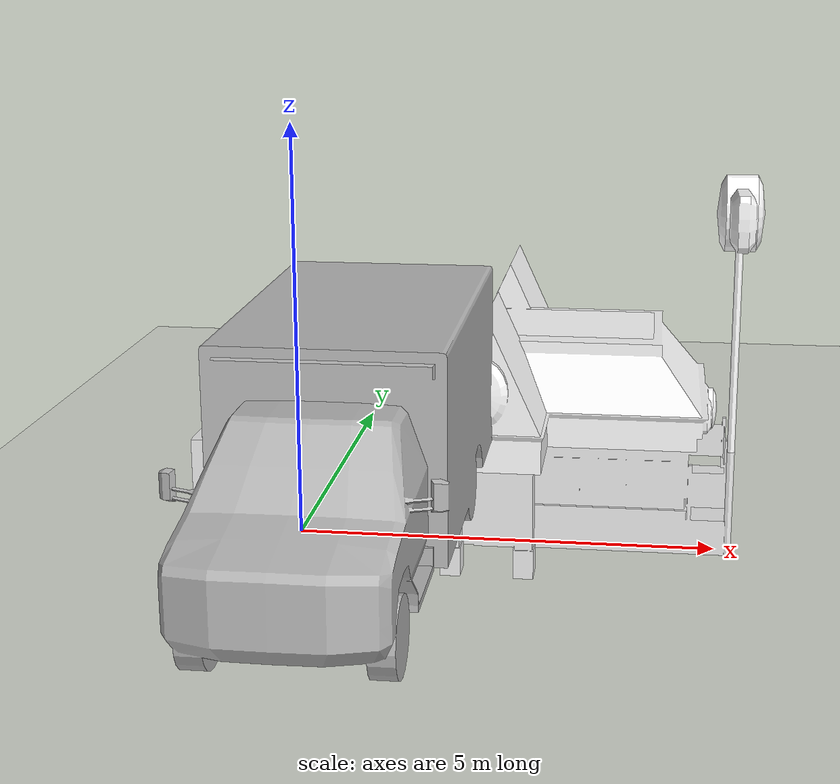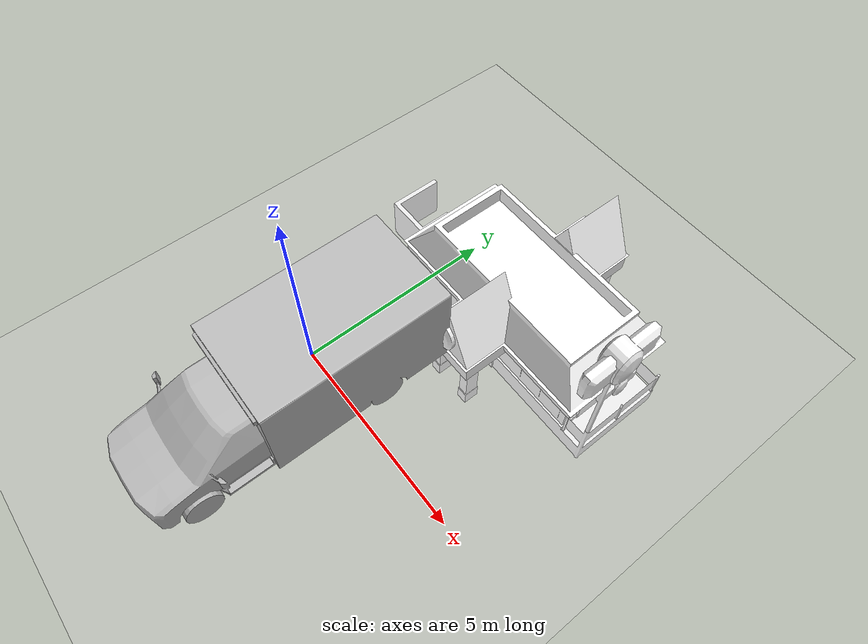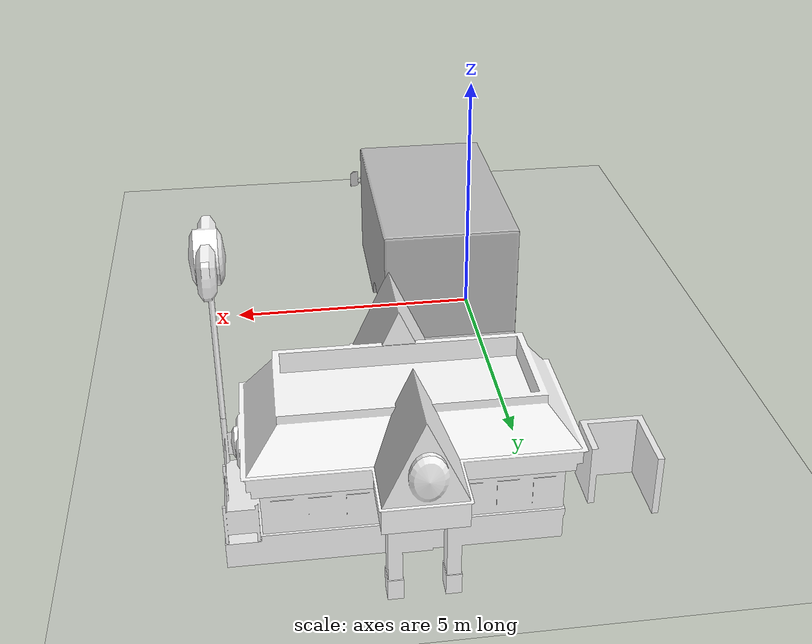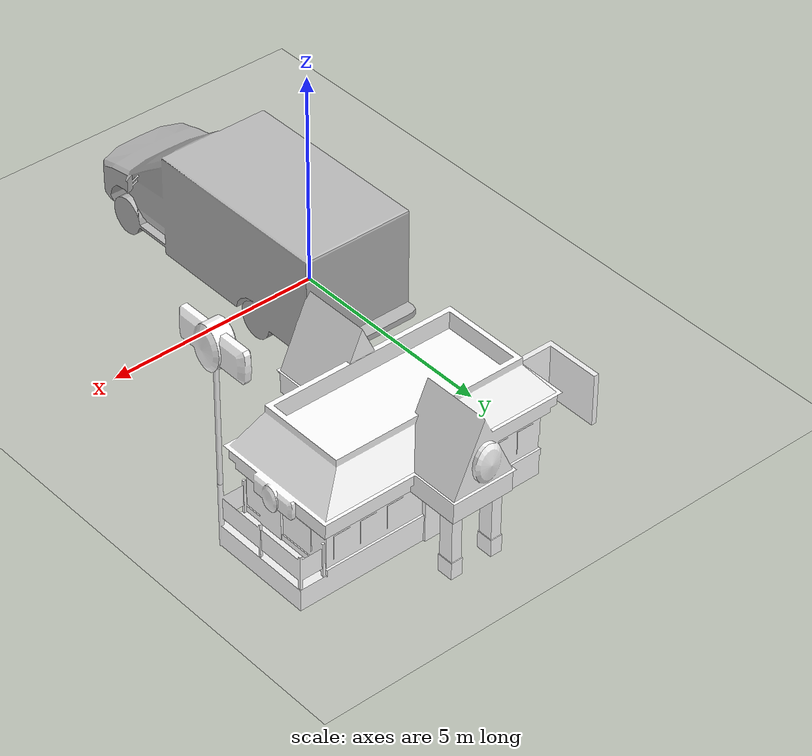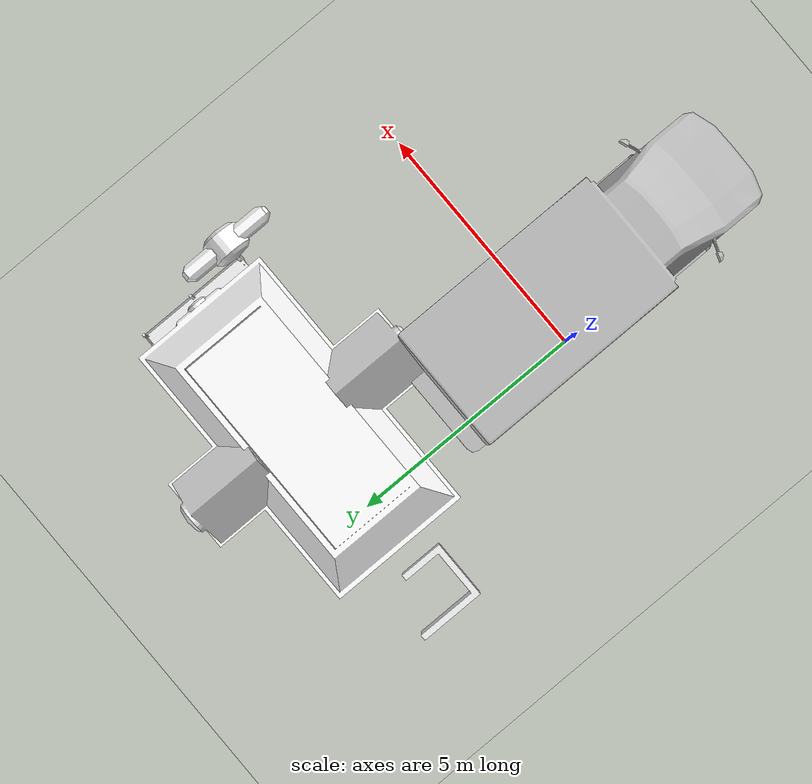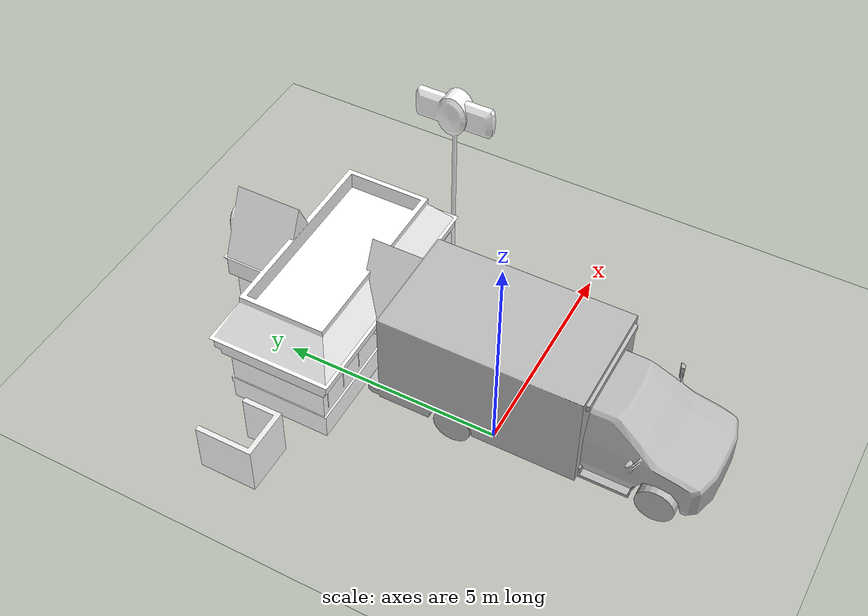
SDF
<sdf version='1.6'>
  <world name='default'>
    <light name='sun' type='directional'>
      <cast_shadows>1</cast_shadows>
      <pose frame=''>0 0 10 0 -0 0</pose>
      <diffuse>0.8 0.8 0.8 1</diffuse>
      <specular>0.2 0.2 0.2 1</specular>
      <attenuation>
        <range>1000</range>
        <constant>0.9</constant>
        <linear>0.01</linear>
        <quadratic>0.001</quadratic>
      </attenuation>
      <direction>-0.5 0.1 -0.9</direction>
    </light>

    <model name='ground_plane'>
      <static>1</static>
      <link name='link'>
        <collision name='collision'>
          <geometry>
            <plane>
              <normal>0 0 1</normal>
              <size>100 100</size>
            </plane>
          </geometry>
          <surface>
            <contact>
              <collide_bitmask>65535</collide_bitmask>
              <ode/>
            </contact>
            <friction>
              <ode>
                <mu>100</mu>
                <mu2>50</mu2>
              </ode>
              <torsional>
                <ode/>
              </torsional>
            </friction>
            <bounce/>
          </surface>
          <max_contacts>10</max_contacts>
        </collision>
        <visual name='visual'>
          <cast_shadows>0</cast_shadows>
          <geometry>
            <plane>
              <normal>0 0 1</normal>
              <size>100 100</size>
            </plane>
          </geometry>
          <material>
            <script>
              <uri>file://media/materials/scripts/gazebo.material</uri>
              <name>Gazebo/Grey</name>
            </script>
          </material>
        </visual>
        <self_collide>0</self_collide>
        <enable_wind>0</enable_wind>
        <kinematic>0</kinematic>
      </link>
    </model>

    <gravity>0 0 -9.8</gravity>
    <magnetic_field>6e-06 2.3e-05 -4.2e-05</magnetic_field>
    <atmosphere type='adiabatic'/>
    <physics name='default_physics' default='0' type='ode'>
      <max_step_size>0.001</max_step_size>
      <real_time_factor>1</real_time_factor>
      <real_time_update_rate>1000</real_time_update_rate>
    </physics>
    <scene>
      <ambient>0.4 0.4 0.4 1</ambient>
      <background>0.7 0.7 0.7 1</background>
      <shadows>1</shadows>
    </scene>
    <audio>
      <device>default</device>
    </audio>
    <wind/>
    <spherical_coordinates>
      <surface_model>EARTH_WGS84</surface_model>
      <latitude_deg>0</latitude_deg>
      <longitude_deg>0</longitude_deg>
      <elevation>0</elevation>
      <heading_deg>0</heading_deg>
    </spherical_coordinates>

    <model name='ambulance'>
          <pose frame=''>0.760956 -0.886921 0 0 -0 0</pose>
      <static>1</static>
      <link name='link'>
        <collision name='collision'>
          <geometry>
            <mesh>
              <scale>0.0254 0.0254 0.0254</scale>
              <uri>model://ambulance/meshes/ambulance.obj</uri>
            </mesh>
          </geometry>
          <max_contacts>10</max_contacts>
          <surface>
            <contact>
              <ode/>
            </contact>
            <bounce/>
            <friction>
              <torsional>
                <ode/>
              </torsional>
              <ode/>
            </friction>
          </surface>
        </collision>
        <visual name='visual'>
          <geometry>
            <mesh>
              <scale>0.0254 0.0254 0.0254</scale>
              <uri>model://ambulance/meshes/ambulance.obj</uri>
            </mesh>
          </geometry>
        </visual>
        <self_collide>0</self_collide>
        <enable_wind>0</enable_wind>
        <kinematic>0</kinematic>
      </link>
    </model>

    <model name='Fast Food'>
      <pose frame=''>2 5 0 0 -0 0</pose>
      <static>1</static>
      <link name='link'>
        <collision name='collision'>
          <geometry>
            <mesh>
              <uri>model://fast_food/meshes/fast_food.dae</uri>
            </mesh>
          </geometry>
          <max_contacts>10</max_contacts>
          <surface>
            <contact>
              <ode/>
            </contact>
            <bounce/>
            <friction>
              <torsional>
                <ode/>
              </torsional>
              <ode/>
            </friction>
          </surface>
        </collision>
        <visual name='visual'>
          <geometry>
            <mesh>
            <uri>model://fast_food/meshes/fast_food.dae</uri>
            </mesh>
          </geometry>
          <material>
            <script>
              <uri>model://fast_food/materials/scripts</uri>
              <uri>model://fast_food/materials/textures</uri>
              <name>FastFood/Diffuse</name>
            </script>
            <shader type='normal_map_tangent_space'>
              <normal_map>FastFood_Normal.png</normal_map>
            </shader>
          </material>
        </visual>
        <self_collide>0</self_collide>
        <enable_wind>0</enable_wind>
        <kinematic>0</kinematic>
      </link>
      <pose frame=''>-4.77533 12.7492 0 0 -0 0</pose>
    </model>

    <gui fullscreen='0'>
      <camera name='user_camera'>
        <pose frame=''>33.3946 -28.6024 10.9886 0 0.275643 2.35619</pose>
        <view_controller>orbit</view_controller>
        <projection_type>perspective</projection_type>
      </camera>
    </gui>
  </world>
</sdf>
